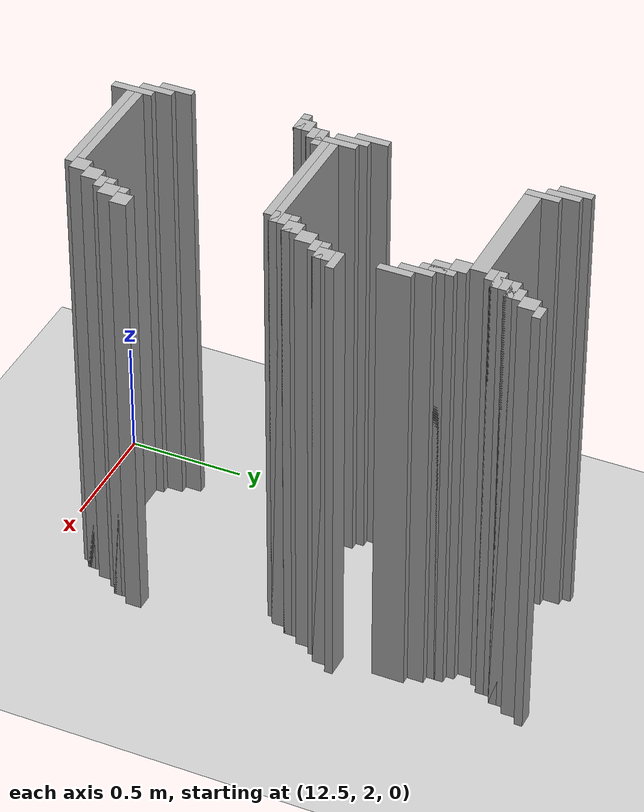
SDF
<sdf version="1.6">
 <world name="slam_world">
  <model name="ground_plane">
   <static>true</static>
   <link name="link">
    <collision name="collision">
     <geometry><plane><normal>0 0 1</normal><size>100 100</size></plane></geometry>
    </collision>
    <visual name="visual">
     <geometry><plane><normal>0 0 1</normal><size>100 100</size></plane></geometry>
     <material>
      <ambient>0.8 0.8 0.8 1</ambient>
      <diffuse>0.8 0.8 0.8 1</diffuse>
      <specular>0.8 0.8 0.8 1</specular>
     </material>
    </visual>
   </link>
  </model>
  <model name="wall_4349">
   <static>true</static>
   <pose>13.39907192575406 4.158932714617169 1.0 0 0 0</pose>
   <link name="link">
    <collision name="collision">
     <geometry><box><size>0.06960556844547564 0.03480278422273782 2.0</size></box></geometry>
    </collision>
    <visual name="visual">
     <geometry><box><size>0.06960556844547564 0.03480278422273782 2.0</size></box></geometry>
     <material><ambient>0.5 0.5 0.5 1</ambient><diffuse>0.7 0.7 0.7 1</diffuse></material>
    </visual>
   </link>
  </model>
  <model name="wall_4364">
   <static>true</static>
   <pose>13.364269141531322 4.106728538283062 1.0 0 0 0</pose>
   <link name="link">
    <collision name="collision">
     <geometry><box><size>0.06960556844547564 0.06960556844547564 2.0</size></box></geometry>
    </collision>
    <visual name="visual">
     <geometry><box><size>0.06960556844547564 0.06960556844547564 2.0</size></box></geometry>
     <material><ambient>0.5 0.5 0.5 1</ambient><diffuse>0.7 0.7 0.7 1</diffuse></material>
    </visual>
   </link>
  </model>
  <model name="wall_4378">
   <static>true</static>
   <pose>12.650812064965196 4.002320185614849 1.0 0 0 0</pose>
   <link name="link">
    <collision name="collision">
     <geometry><box><size>0.03480278422273782 0.13921113689095127 2.0</size></box></geometry>
    </collision>
    <visual name="visual">
     <geometry><box><size>0.03480278422273782 0.13921113689095127 2.0</size></box></geometry>
     <material><ambient>0.5 0.5 0.5 1</ambient><diffuse>0.7 0.7 0.7 1</diffuse></material>
    </visual>
   </link>
  </model>
  <model name="wall_4379">
   <static>true</static>
   <pose>13.329466357308585 4.037122969837587 1.0 0 0 0</pose>
   <link name="link">
    <collision name="collision">
     <geometry><box><size>0.06960556844547564 0.06960556844547564 2.0</size></box></geometry>
    </collision>
    <visual name="visual">
     <geometry><box><size>0.06960556844547564 0.06960556844547564 2.0</size></box></geometry>
     <material><ambient>0.5 0.5 0.5 1</ambient><diffuse>0.7 0.7 0.7 1</diffuse></material>
    </visual>
   </link>
  </model>
  <model name="wall_4393">
   <static>true</static>
   <pose>12.685614849187935 3.967517401392111 1.0 0 0 0</pose>
   <link name="link">
    <collision name="collision">
     <geometry><box><size>0.03480278422273782 0.13921113689095127 2.0</size></box></geometry>
    </collision>
    <visual name="visual">
     <geometry><box><size>0.03480278422273782 0.13921113689095127 2.0</size></box></geometry>
     <material><ambient>0.5 0.5 0.5 1</ambient><diffuse>0.7 0.7 0.7 1</diffuse></material>
    </visual>
   </link>
  </model>
  <model name="wall_4394">
   <static>true</static>
   <pose>13.312064965197216 4.019721577726218 1.0 0 0 0</pose>
   <link name="link">
    <collision name="collision">
     <geometry><box><size>0.10440835266821345 0.03480278422273782 2.0</size></box></geometry>
    </collision>
    <visual name="visual">
     <geometry><box><size>0.10440835266821345 0.03480278422273782 2.0</size></box></geometry>
     <material><ambient>0.5 0.5 0.5 1</ambient><diffuse>0.7 0.7 0.7 1</diffuse></material>
    </visual>
   </link>
  </model>
  <model name="wall_4402">
   <static>true</static>
   <pose>13.294663573085847 3.967517401392111 1.0 0 0 0</pose>
   <link name="link">
    <collision name="collision">
     <geometry><box><size>0.06960556844547564 0.06960556844547564 2.0</size></box></geometry>
    </collision>
    <visual name="visual">
     <geometry><box><size>0.06960556844547564 0.06960556844547564 2.0</size></box></geometry>
     <material><ambient>0.5 0.5 0.5 1</ambient><diffuse>0.7 0.7 0.7 1</diffuse></material>
    </visual>
   </link>
  </model>
  <model name="wall_4416">
   <static>true</static>
   <pose>12.720417633410673 3.897911832946636 1.0 0 0 0</pose>
   <link name="link">
    <collision name="collision">
     <geometry><box><size>0.03480278422273782 0.13921113689095127 2.0</size></box></geometry>
    </collision>
    <visual name="visual">
     <geometry><box><size>0.03480278422273782 0.13921113689095127 2.0</size></box></geometry>
     <material><ambient>0.5 0.5 0.5 1</ambient><diffuse>0.7 0.7 0.7 1</diffuse></material>
    </visual>
   </link>
  </model>
  <model name="wall_4417">
   <static>true</static>
   <pose>13.277262180974477 3.9501160092807424 1.0 0 0 0</pose>
   <link name="link">
    <collision name="collision">
     <geometry><box><size>0.10440835266821345 0.03480278422273782 2.0</size></box></geometry>
    </collision>
    <visual name="visual">
     <geometry><box><size>0.10440835266821345 0.03480278422273782 2.0</size></box></geometry>
     <material><ambient>0.5 0.5 0.5 1</ambient><diffuse>0.7 0.7 0.7 1</diffuse></material>
    </visual>
   </link>
  </model>
  <model name="wall_4425">
   <static>true</static>
   <pose>13.259860788863108 3.9153132250580045 1.0 0 0 0</pose>
   <link name="link">
    <collision name="collision">
     <geometry><box><size>0.06960556844547564 0.03480278422273782 2.0</size></box></geometry>
    </collision>
    <visual name="visual">
     <geometry><box><size>0.06960556844547564 0.03480278422273782 2.0</size></box></geometry>
     <material><ambient>0.5 0.5 0.5 1</ambient><diffuse>0.7 0.7 0.7 1</diffuse></material>
    </visual>
   </link>
  </model>
  <model name="wall_4440">
   <static>true</static>
   <pose>12.998839907192576 3.863109048723898 1.0 0 0 0</pose>
   <link name="link">
    <collision name="collision">
     <geometry><box><size>0.5220417633410672 0.06960556844547564 2.0</size></box></geometry>
    </collision>
    <visual name="visual">
     <geometry><box><size>0.5220417633410672 0.06960556844547564 2.0</size></box></geometry>
     <material><ambient>0.5 0.5 0.5 1</ambient><diffuse>0.7 0.7 0.7 1</diffuse></material>
    </visual>
   </link>
  </model>
  <model name="wall_4457">
   <static>true</static>
   <pose>13.259860788863108 3.793503480278422 1.0 0 0 0</pose>
   <link name="link">
    <collision name="collision">
     <geometry><box><size>0.06960556844547564 0.06960556844547564 2.0</size></box></geometry>
    </collision>
    <visual name="visual">
     <geometry><box><size>0.06960556844547564 0.06960556844547564 2.0</size></box></geometry>
     <material><ambient>0.5 0.5 0.5 1</ambient><diffuse>0.7 0.7 0.7 1</diffuse></material>
    </visual>
   </link>
  </model>
  <model name="wall_4474">
   <static>true</static>
   <pose>13.312064965197216 3.7238979118329465 1.0 0 0 0</pose>
   <link name="link">
    <collision name="collision">
     <geometry><box><size>0.03480278422273782 0.13921113689095127 2.0</size></box></geometry>
    </collision>
    <visual name="visual">
     <geometry><box><size>0.03480278422273782 0.13921113689095127 2.0</size></box></geometry>
     <material><ambient>0.5 0.5 0.5 1</ambient><diffuse>0.7 0.7 0.7 1</diffuse></material>
    </visual>
   </link>
  </model>
  <model name="wall_4491">
   <static>true</static>
   <pose>13.294663573085847 3.7238979118329465 1.0 0 0 0</pose>
   <link name="link">
    <collision name="collision">
     <geometry><box><size>0.06960556844547564 0.06960556844547564 2.0</size></box></geometry>
    </collision>
    <visual name="visual">
     <geometry><box><size>0.06960556844547564 0.06960556844547564 2.0</size></box></geometry>
     <material><ambient>0.5 0.5 0.5 1</ambient><diffuse>0.7 0.7 0.7 1</diffuse></material>
    </visual>
   </link>
  </model>
  <model name="wall_4508">
   <static>true</static>
   <pose>13.346867749419953 3.6542923433874708 1.0 0 0 0</pose>
   <link name="link">
    <collision name="collision">
     <geometry><box><size>0.03480278422273782 0.13921113689095127 2.0</size></box></geometry>
    </collision>
    <visual name="visual">
     <geometry><box><size>0.03480278422273782 0.13921113689095127 2.0</size></box></geometry>
     <material><ambient>0.5 0.5 0.5 1</ambient><diffuse>0.7 0.7 0.7 1</diffuse></material>
    </visual>
   </link>
  </model>
  <model name="wall_4532">
   <static>true</static>
   <pose>13.38167053364269 3.584686774941995 1.0 0 0 0</pose>
   <link name="link">
    <collision name="collision">
     <geometry><box><size>0.03480278422273782 0.13921113689095127 2.0</size></box></geometry>
    </collision>
    <visual name="visual">
     <geometry><box><size>0.03480278422273782 0.13921113689095127 2.0</size></box></geometry>
     <material><ambient>0.5 0.5 0.5 1</ambient><diffuse>0.7 0.7 0.7 1</diffuse></material>
    </visual>
   </link>
  </model>
  <model name="wall_4629">
   <static>true</static>
   <pose>13.416473317865428 3.358468677494199 1.0 0 0 0</pose>
   <link name="link">
    <collision name="collision">
     <geometry><box><size>0.10440835266821345 0.03480278422273782 2.0</size></box></geometry>
    </collision>
    <visual name="visual">
     <geometry><box><size>0.10440835266821345 0.03480278422273782 2.0</size></box></geometry>
     <material><ambient>0.5 0.5 0.5 1</ambient><diffuse>0.7 0.7 0.7 1</diffuse></material>
    </visual>
   </link>
  </model>
  <model name="wall_4642">
   <static>true</static>
   <pose>13.39907192575406 3.3062645011600926 1.0 0 0 0</pose>
   <link name="link">
    <collision name="collision">
     <geometry><box><size>0.06960556844547564 0.06960556844547564 2.0</size></box></geometry>
    </collision>
    <visual name="visual">
     <geometry><box><size>0.06960556844547564 0.06960556844547564 2.0</size></box></geometry>
     <material><ambient>0.5 0.5 0.5 1</ambient><diffuse>0.7 0.7 0.7 1</diffuse></material>
    </visual>
   </link>
  </model>
  <model name="wall_4655">
   <static>true</static>
   <pose>13.38167053364269 3.288863109048724 1.0 0 0 0</pose>
   <link name="link">
    <collision name="collision">
     <geometry><box><size>0.10440835266821345 0.03480278422273782 2.0</size></box></geometry>
    </collision>
    <visual name="visual">
     <geometry><box><size>0.10440835266821345 0.03480278422273782 2.0</size></box></geometry>
     <material><ambient>0.5 0.5 0.5 1</ambient><diffuse>0.7 0.7 0.7 1</diffuse></material>
    </visual>
   </link>
  </model>
  <model name="wall_4662">
   <static>true</static>
   <pose>13.364269141531322 3.254060324825986 1.0 0 0 0</pose>
   <link name="link">
    <collision name="collision">
     <geometry><box><size>0.06960556844547564 0.03480278422273782 2.0</size></box></geometry>
    </collision>
    <visual name="visual">
     <geometry><box><size>0.06960556844547564 0.03480278422273782 2.0</size></box></geometry>
     <material><ambient>0.5 0.5 0.5 1</ambient><diffuse>0.7 0.7 0.7 1</diffuse></material>
    </visual>
   </link>
  </model>
  <model name="wall_4673">
   <static>true</static>
   <pose>12.650812064965196 3.167053364269141 1.0 0 0 0</pose>
   <link name="link">
    <collision name="collision">
     <geometry><box><size>0.03480278422273782 0.13921113689095127 2.0</size></box></geometry>
    </collision>
    <visual name="visual">
     <geometry><box><size>0.03480278422273782 0.13921113689095127 2.0</size></box></geometry>
     <material><ambient>0.5 0.5 0.5 1</ambient><diffuse>0.7 0.7 0.7 1</diffuse></material>
    </visual>
   </link>
  </model>
  <model name="wall_4674">
   <static>true</static>
   <pose>13.329466357308585 3.201856148491879 1.0 0 0 0</pose>
   <link name="link">
    <collision name="collision">
     <geometry><box><size>0.06960556844547564 0.06960556844547564 2.0</size></box></geometry>
    </collision>
    <visual name="visual">
     <geometry><box><size>0.06960556844547564 0.06960556844547564 2.0</size></box></geometry>
     <material><ambient>0.5 0.5 0.5 1</ambient><diffuse>0.7 0.7 0.7 1</diffuse></material>
    </visual>
   </link>
  </model>
  <model name="wall_4686">
   <static>true</static>
   <pose>12.685614849187935 3.097447795823666 1.0 0 0 0</pose>
   <link name="link">
    <collision name="collision">
     <geometry><box><size>0.03480278422273782 0.13921113689095127 2.0</size></box></geometry>
    </collision>
    <visual name="visual">
     <geometry><box><size>0.03480278422273782 0.13921113689095127 2.0</size></box></geometry>
     <material><ambient>0.5 0.5 0.5 1</ambient><diffuse>0.7 0.7 0.7 1</diffuse></material>
    </visual>
   </link>
  </model>
  <model name="wall_4687">
   <static>true</static>
   <pose>13.294663573085847 3.1322505800464038 1.0 0 0 0</pose>
   <link name="link">
    <collision name="collision">
     <geometry><box><size>0.06960556844547564 0.06960556844547564 2.0</size></box></geometry>
    </collision>
    <visual name="visual">
     <geometry><box><size>0.06960556844547564 0.06960556844547564 2.0</size></box></geometry>
     <material><ambient>0.5 0.5 0.5 1</ambient><diffuse>0.7 0.7 0.7 1</diffuse></material>
    </visual>
   </link>
  </model>
  <model name="wall_4699">
   <static>true</static>
   <pose>12.720417633410673 3.02784222737819 1.0 0 0 0</pose>
   <link name="link">
    <collision name="collision">
     <geometry><box><size>0.03480278422273782 0.2088167053364269 2.0</size></box></geometry>
    </collision>
    <visual name="visual">
     <geometry><box><size>0.03480278422273782 0.2088167053364269 2.0</size></box></geometry>
     <material><ambient>0.5 0.5 0.5 1</ambient><diffuse>0.7 0.7 0.7 1</diffuse></material>
    </visual>
   </link>
  </model>
  <model name="wall_4700">
   <static>true</static>
   <pose>13.277262180974477 3.1148491879350346 1.0 0 0 0</pose>
   <link name="link">
    <collision name="collision">
     <geometry><box><size>0.10440835266821345 0.03480278422273782 2.0</size></box></geometry>
    </collision>
    <visual name="visual">
     <geometry><box><size>0.10440835266821345 0.03480278422273782 2.0</size></box></geometry>
     <material><ambient>0.5 0.5 0.5 1</ambient><diffuse>0.7 0.7 0.7 1</diffuse></material>
    </visual>
   </link>
  </model>
  <model name="wall_4707">
   <static>true</static>
   <pose>13.259860788863108 3.062645011600928 1.0 0 0 0</pose>
   <link name="link">
    <collision name="collision">
     <geometry><box><size>0.06960556844547564 0.06960556844547564 2.0</size></box></geometry>
    </collision>
    <visual name="visual">
     <geometry><box><size>0.06960556844547564 0.06960556844547564 2.0</size></box></geometry>
     <material><ambient>0.5 0.5 0.5 1</ambient><diffuse>0.7 0.7 0.7 1</diffuse></material>
    </visual>
   </link>
  </model>
  <model name="wall_4722">
   <static>true</static>
   <pose>13.016241299303944 3.045243619489559 1.0 0 0 0</pose>
   <link name="link">
    <collision name="collision">
     <geometry><box><size>0.5568445475638051 0.03480278422273782 2.0</size></box></geometry>
    </collision>
    <visual name="visual">
     <geometry><box><size>0.5568445475638051 0.03480278422273782 2.0</size></box></geometry>
     <material><ambient>0.5 0.5 0.5 1</ambient><diffuse>0.7 0.7 0.7 1</diffuse></material>
    </visual>
   </link>
  </model>
  <model name="wall_4729">
   <static>true</static>
   <pose>12.998839907192576 3.010440835266821 1.0 0 0 0</pose>
   <link name="link">
    <collision name="collision">
     <geometry><box><size>0.5220417633410672 0.03480278422273782 2.0</size></box></geometry>
    </collision>
    <visual name="visual">
     <geometry><box><size>0.5220417633410672 0.03480278422273782 2.0</size></box></geometry>
     <material><ambient>0.5 0.5 0.5 1</ambient><diffuse>0.7 0.7 0.7 1</diffuse></material>
    </visual>
   </link>
  </model>
  <model name="wall_4744">
   <static>true</static>
   <pose>12.720417633410673 2.975638051044083 1.0 0 0 0</pose>
   <link name="link">
    <collision name="collision">
     <geometry><box><size>0.10440835266821345 0.03480278422273782 2.0</size></box></geometry>
    </collision>
    <visual name="visual">
     <geometry><box><size>0.10440835266821345 0.03480278422273782 2.0</size></box></geometry>
     <material><ambient>0.5 0.5 0.5 1</ambient><diffuse>0.7 0.7 0.7 1</diffuse></material>
    </visual>
   </link>
  </model>
  <model name="wall_4749">
   <static>true</static>
   <pose>12.703016241299304 2.9408352668213458 1.0 0 0 0</pose>
   <link name="link">
    <collision name="collision">
     <geometry><box><size>0.06960556844547564 0.03480278422273782 2.0</size></box></geometry>
    </collision>
    <visual name="visual">
     <geometry><box><size>0.06960556844547564 0.03480278422273782 2.0</size></box></geometry>
     <material><ambient>0.5 0.5 0.5 1</ambient><diffuse>0.7 0.7 0.7 1</diffuse></material>
    </visual>
   </link>
  </model>
  <model name="wall_4763">
   <static>true</static>
   <pose>12.668213457076565 2.8886310904872388 1.0 0 0 0</pose>
   <link name="link">
    <collision name="collision">
     <geometry><box><size>0.06960556844547564 0.06960556844547564 2.0</size></box></geometry>
    </collision>
    <visual name="visual">
     <geometry><box><size>0.06960556844547564 0.06960556844547564 2.0</size></box></geometry>
     <material><ambient>0.5 0.5 0.5 1</ambient><diffuse>0.7 0.7 0.7 1</diffuse></material>
    </visual>
   </link>
  </model>
  <model name="wall_4779">
   <static>true</static>
   <pose>12.650812064965196 2.87122969837587 1.0 0 0 0</pose>
   <link name="link">
    <collision name="collision">
     <geometry><box><size>0.10440835266821345 0.03480278422273782 2.0</size></box></geometry>
    </collision>
    <visual name="visual">
     <geometry><box><size>0.10440835266821345 0.03480278422273782 2.0</size></box></geometry>
     <material><ambient>0.5 0.5 0.5 1</ambient><diffuse>0.7 0.7 0.7 1</diffuse></material>
    </visual>
   </link>
  </model>
  <model name="wall_4918">
   <static>true</static>
   <pose>13.39907192575406 2.470997679814385 1.0 0 0 0</pose>
   <link name="link">
    <collision name="collision">
     <geometry><box><size>0.06960556844547564 0.06960556844547564 2.0</size></box></geometry>
    </collision>
    <visual name="visual">
     <geometry><box><size>0.06960556844547564 0.06960556844547564 2.0</size></box></geometry>
     <material><ambient>0.5 0.5 0.5 1</ambient><diffuse>0.7 0.7 0.7 1</diffuse></material>
    </visual>
   </link>
  </model>
  <model name="wall_4931">
   <static>true</static>
   <pose>13.38167053364269 2.453596287703016 1.0 0 0 0</pose>
   <link name="link">
    <collision name="collision">
     <geometry><box><size>0.10440835266821345 0.03480278422273782 2.0</size></box></geometry>
    </collision>
    <visual name="visual">
     <geometry><box><size>0.10440835266821345 0.03480278422273782 2.0</size></box></geometry>
     <material><ambient>0.5 0.5 0.5 1</ambient><diffuse>0.7 0.7 0.7 1</diffuse></material>
    </visual>
   </link>
  </model>
  <model name="wall_4943">
   <static>true</static>
   <pose>13.364269141531322 2.4013921113689096 1.0 0 0 0</pose>
   <link name="link">
    <collision name="collision">
     <geometry><box><size>0.06960556844547564 0.06960556844547564 2.0</size></box></geometry>
    </collision>
    <visual name="visual">
     <geometry><box><size>0.06960556844547564 0.06960556844547564 2.0</size></box></geometry>
     <material><ambient>0.5 0.5 0.5 1</ambient><diffuse>0.7 0.7 0.7 1</diffuse></material>
    </visual>
   </link>
  </model>
  <model name="wall_4955">
   <static>true</static>
   <pose>12.650812064965196 2.331786542923434 1.0 0 0 0</pose>
   <link name="link">
    <collision name="collision">
     <geometry><box><size>0.03480278422273782 0.13921113689095127 2.0</size></box></geometry>
    </collision>
    <visual name="visual">
     <geometry><box><size>0.03480278422273782 0.13921113689095127 2.0</size></box></geometry>
     <material><ambient>0.5 0.5 0.5 1</ambient><diffuse>0.7 0.7 0.7 1</diffuse></material>
    </visual>
   </link>
  </model>
  <model name="wall_4956">
   <static>true</static>
   <pose>13.346867749419953 2.3839907192575405 1.0 0 0 0</pose>
   <link name="link">
    <collision name="collision">
     <geometry><box><size>0.10440835266821345 0.03480278422273782 2.0</size></box></geometry>
    </collision>
    <visual name="visual">
     <geometry><box><size>0.10440835266821345 0.03480278422273782 2.0</size></box></geometry>
     <material><ambient>0.5 0.5 0.5 1</ambient><diffuse>0.7 0.7 0.7 1</diffuse></material>
    </visual>
   </link>
  </model>
  <model name="wall_4964">
   <static>true</static>
   <pose>13.329466357308585 2.3491879350348026 1.0 0 0 0</pose>
   <link name="link">
    <collision name="collision">
     <geometry><box><size>0.06960556844547564 0.03480278422273782 2.0</size></box></geometry>
    </collision>
    <visual name="visual">
     <geometry><box><size>0.06960556844547564 0.03480278422273782 2.0</size></box></geometry>
     <material><ambient>0.5 0.5 0.5 1</ambient><diffuse>0.7 0.7 0.7 1</diffuse></material>
    </visual>
   </link>
  </model>
  <model name="wall_4976">
   <static>true</static>
   <pose>12.685614849187935 2.262180974477958 1.0 0 0 0</pose>
   <link name="link">
    <collision name="collision">
     <geometry><box><size>0.03480278422273782 0.13921113689095127 2.0</size></box></geometry>
    </collision>
    <visual name="visual">
     <geometry><box><size>0.03480278422273782 0.13921113689095127 2.0</size></box></geometry>
     <material><ambient>0.5 0.5 0.5 1</ambient><diffuse>0.7 0.7 0.7 1</diffuse></material>
    </visual>
   </link>
  </model>
  <model name="wall_4977">
   <static>true</static>
   <pose>13.294663573085847 2.296983758700696 1.0 0 0 0</pose>
   <link name="link">
    <collision name="collision">
     <geometry><box><size>0.06960556844547564 0.06960556844547564 2.0</size></box></geometry>
    </collision>
    <visual name="visual">
     <geometry><box><size>0.06960556844547564 0.06960556844547564 2.0</size></box></geometry>
     <material><ambient>0.5 0.5 0.5 1</ambient><diffuse>0.7 0.7 0.7 1</diffuse></material>
    </visual>
   </link>
  </model>
  <model name="wall_4989">
   <static>true</static>
   <pose>12.720417633410673 2.1751740139211138 1.0 0 0 0</pose>
   <link name="link">
    <collision name="collision">
     <geometry><box><size>0.03480278422273782 0.17401392111368907 2.0</size></box></geometry>
    </collision>
    <visual name="visual">
     <geometry><box><size>0.03480278422273782 0.17401392111368907 2.0</size></box></geometry>
     <material><ambient>0.5 0.5 0.5 1</ambient><diffuse>0.7 0.7 0.7 1</diffuse></material>
    </visual>
   </link>
  </model>
  <model name="wall_4990">
   <static>true</static>
   <pose>13.259860788863108 2.2273781902552203 1.0 0 0 0</pose>
   <link name="link">
    <collision name="collision">
     <geometry><box><size>0.06960556844547564 0.06960556844547564 2.0</size></box></geometry>
    </collision>
    <visual name="visual">
     <geometry><box><size>0.06960556844547564 0.06960556844547564 2.0</size></box></geometry>
     <material><ambient>0.5 0.5 0.5 1</ambient><diffuse>0.7 0.7 0.7 1</diffuse></material>
    </visual>
   </link>
  </model>
  <model name="wall_5002">
   <static>true</static>
   <pose>13.016241299303944 2.2099767981438516 1.0 0 0 0</pose>
   <link name="link">
    <collision name="collision">
     <geometry><box><size>0.5568445475638051 0.03480278422273782 2.0</size></box></geometry>
    </collision>
    <visual name="visual">
     <geometry><box><size>0.5568445475638051 0.03480278422273782 2.0</size></box></geometry>
     <material><ambient>0.5 0.5 0.5 1</ambient><diffuse>0.7 0.7 0.7 1</diffuse></material>
    </visual>
   </link>
  </model>
  <model name="wall_5013">
   <static>true</static>
   <pose>12.998839907192576 2.1751740139211138 1.0 0 0 0</pose>
   <link name="link">
    <collision name="collision">
     <geometry><box><size>0.5220417633410672 0.03480278422273782 2.0</size></box></geometry>
    </collision>
    <visual name="visual">
     <geometry><box><size>0.5220417633410672 0.03480278422273782 2.0</size></box></geometry>
     <material><ambient>0.5 0.5 0.5 1</ambient><diffuse>0.7 0.7 0.7 1</diffuse></material>
    </visual>
   </link>
  </model>
 </world>
</sdf>
